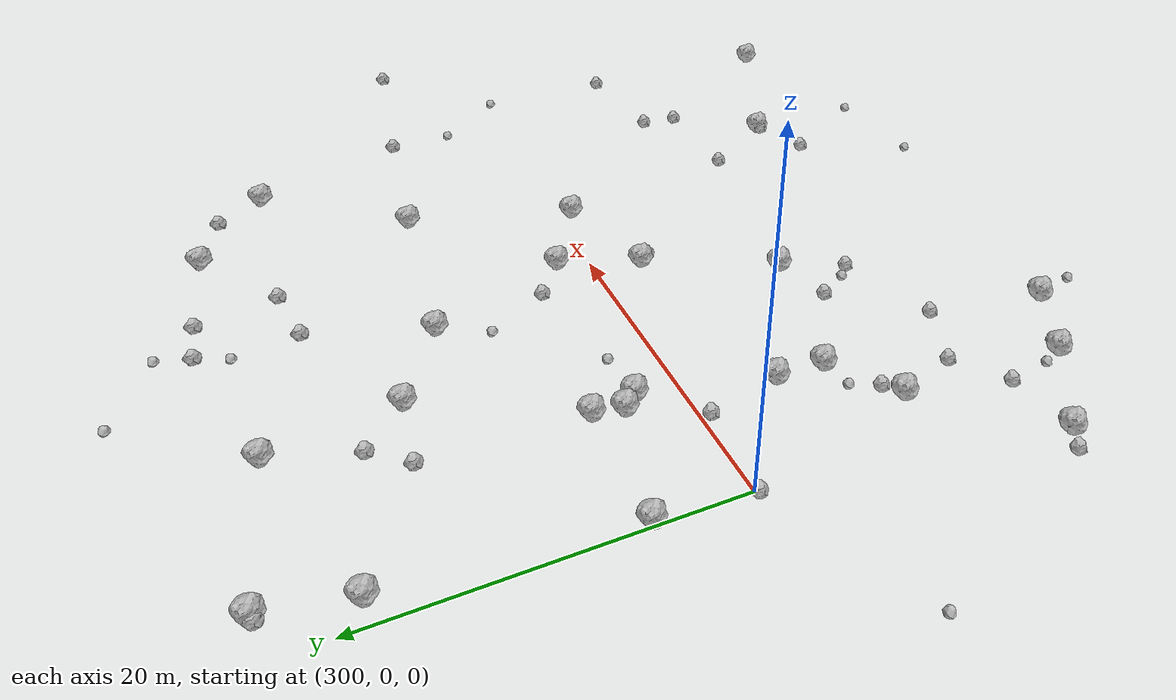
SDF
<sdf version="1.6">
 <world name="default">
  <include><uri>model://sun</uri></include>
  <model name="rock1_8_3">
   <include><uri>model://rock1</uri><pose>330.20295519469346 -17.174651503190063 0.5 0 0 0</pose></include>
  </model>
  <model name="rock1_8_4">
   <include><uri>model://rock1</uri><pose>306.66241591669984 -5.002842590766846 0.5 0 0 0</pose></include>
  </model>
  <model name="rock1_8_5">
   <include><uri>model://rock1</uri><pose>311.855378233129 20.98807953715793 0.5 0 0 0</pose></include>
  </model>
  <model name="rock1_8_6">
   <include><uri>model://rock1</uri><pose>308.5652072691106 2.3588543582813912 0.5 0 0 0</pose></include>
  </model>
  <model name="rock1_8_7">
   <include><uri>model://rock1</uri><pose>317.9394539228037 10.231781296043302 0.5 0 0 0</pose></include>
  </model>
  <model name="rock1_8_8">
   <include><uri>model://rock1</uri><pose>307.7295003837792 3.2767136876637792 0.5 0 0 0</pose></include>
  </model>
  <model name="rock1_8_9">
   <include><uri>model://rock1</uri><pose>301.6820650691728 18.43618125912647 0.5 0 0 0</pose></include>
  </model>
  <model name="rock1_8_10">
   <include><uri>model://rock1</uri><pose>328.821797156137 8.65825510836688 0.5 0 0 0</pose></include>
  </model>
  <model name="rock1_8_11">
   <include><uri>model://rock1</uri><pose>320.90441769913247 1.791573658627577 0.5 0 0 0</pose></include>
  </model>
  <model name="rock1_8_12">
   <include><uri>model://rock1</uri><pose>306.5638009647181 -7.855747958374572 0.5 0 0 0</pose></include>
  </model>
  <model name="rock1_8_13">
   <include><uri>model://rock1</uri><pose>319.0602337523888 -2.892322891936111 0.5 0 0 0</pose></include>
  </model>
  <model name="rock1_8_14">
   <include><uri>model://rock1</uri><pose>300.43346040573556 5.217315942010465 0.5 0 0 0</pose></include>
  </model>
  <model name="rock1_8_15">
   <include><uri>model://rock1</uri><pose>302.3411259805106 -20.160281001137392 0.5 0 0 0</pose></include>
  </model>
  <model name="rock1_8_16">
   <include><uri>model://rock1</uri><pose>308.0958102867432 4.9827301792570395 0.5 0 0 0</pose></include>
  </model>
  <model name="rock1_8_17">
   <include><uri>model://rock1</uri><pose>312.83745053771963 13.524950286613496 0.5 0 0 0</pose></include>
  </model>
  <model name="rock1_8_18">
   <include><uri>model://rock1</uri><pose>315.30258809240104 -10.245242518966108 0.5 0 0 0</pose></include>
  </model>
  <model name="rock1_8_19">
   <include><uri>model://rock1</uri><pose>302.8520926121683 -10.465489926669893 0.5 0 0 0</pose></include>
  </model>
  <model name="rock1_8_20">
   <include><uri>model://rock1</uri><pose>329.6215553310617 21.216292162625756 0.5 0 0 0</pose></include>
  </model>
  <model name="rock1_8_21">
   <include><uri>model://rock1</uri><pose>340.1577631790048 -21.830606340718553 0.5 0 0 0</pose></include>
  </model>
  <model name="rock1_8_22">
   <include><uri>model://rock1</uri><pose>325.6689287982356 -1.0873214385585754 0.5 0 0 0</pose></include>
  </model>
  <model name="rock1_8_23">
   <include><uri>model://rock1</uri><pose>335.1147611810753 16.616194429877332 0.5 0 0 0</pose></include>
  </model>
  <model name="rock1_8_24">
   <include><uri>model://rock1</uri><pose>302.6950469865454 23.082941815810912 0.5 0 0 0</pose></include>
  </model>
  <model name="rock1_8_25">
   <include><uri>model://rock1</uri><pose>297.26421578932997 -16.65960926719945 0.5 0 0 0</pose></include>
  </model>
  <model name="rock1_8_26">
   <include><uri>model://rock1</uri><pose>306.5881257781505 -22.470681236273442 0.5 0 0 0</pose></include>
  </model>
  <model name="rock2_8_0">
   <include><uri>model://rock2</uri><pose>311.54394934045274 -11.06339903439245 0.3 0 0 0</pose></include>
  </model>
  <model name="rock2_8_1">
   <include><uri>model://rock2</uri><pose>301.109201225405 -16.068728777172517 0.3 0 0 0</pose></include>
  </model>
  <model name="rock2_8_2">
   <include><uri>model://rock2</uri><pose>329.7122027612622 -17.186698108881323 0.3 0 0 0</pose></include>
  </model>
  <model name="rock2_8_3">
   <include><uri>model://rock2</uri><pose>323.3197890103128 22.457993143493553 0.3 0 0 0</pose></include>
  </model>
  <model name="rock2_8_4">
   <include><uri>model://rock2</uri><pose>337.82941077577476 7.12449647940123 0.3 0 0 0</pose></include>
  </model>
  <model name="rock2_8_5">
   <include><uri>model://rock2</uri><pose>309.9767429693479 16.221887211626758 0.3 0 0 0</pose></include>
  </model>
  <model name="rock2_8_6">
   <include><uri>model://rock2</uri><pose>303.88071659931313 -14.027404082677034 0.3 0 0 0</pose></include>
  </model>
  <model name="rock2_8_7">
   <include><uri>model://rock2</uri><pose>313.3806365213029 -13.680656489553538 0.3 0 0 0</pose></include>
  </model>
  <model name="rock2_8_8">
   <include><uri>model://rock2</uri><pose>333.4997537501871 -12.233603164106391 0.3 0 0 0</pose></include>
  </model>
  <model name="rock2_8_9">
   <include><uri>model://rock2</uri><pose>302.15968149816956 23.00576370264779 0.3 0 0 0</pose></include>
  </model>
  <model name="rock2_8_10">
   <include><uri>model://rock2</uri><pose>324.12455501326673 17.66418742863192 0.3 0 0 0</pose></include>
  </model>
  <model name="rock2_8_11">
   <include><uri>model://rock2</uri><pose>303.60895965109205 -9.585460642553404 0.3 0 0 0</pose></include>
  </model>
  <model name="rock2_8_12">
   <include><uri>model://rock2</uri><pose>308.2505946010179 14.238935001393564 0.3 0 0 0</pose></include>
  </model>
  <model name="rock2_8_13">
   <include><uri>model://rock2</uri><pose>319.2602196546111 -3.4278733554547856 0.3 0 0 0</pose></include>
  </model>
  <model name="rock2_8_14">
   <include><uri>model://rock2</uri><pose>333.14984586638866 19.56983916792082 0.3 0 0 0</pose></include>
  </model>
  <model name="rock2_8_15">
   <include><uri>model://rock2</uri><pose>307.6574772199222 -15.592891757531493 0.3 0 0 0</pose></include>
  </model>
  <model name="rock2_8_16">
   <include><uri>model://rock2</uri><pose>305.40859793866923 -0.5006848240735415 0.3 0 0 0</pose></include>
  </model>
  <model name="rock2_8_17">
   <include><uri>model://rock2</uri><pose>320.2986829126628 17.196345566903716 0.3 0 0 0</pose></include>
  </model>
  <model name="rock2_8_18">
   <include><uri>model://rock2</uri><pose>347.82301315036057 5.157089943162006 0.3 0 0 0</pose></include>
  </model>
  <model name="rock2_8_19">
   <include><uri>model://rock2</uri><pose>326.4973848565545 -18.521973654124352 0.3 0 0 0</pose></include>
  </model>
  <model name="rock2_8_20">
   <include><uri>model://rock2</uri><pose>340.60041130685715 -9.285728134278582 0.3 0 0 0</pose></include>
  </model>
  <model name="rock2_8_21">
   <include><uri>model://rock2</uri><pose>299.7747847887062 -0.10051768942287964 0.3 0 0 0</pose></include>
  </model>
  <model name="rock2_8_22">
   <include><uri>model://rock2</uri><pose>320.59865365372616 22.88423210605312 0.3 0 0 0</pose></include>
  </model>
  <model name="rock2_8_23">
   <include><uri>model://rock2</uri><pose>318.18839105650846 3.739587117963211 0.3 0 0 0</pose></include>
  </model>
  <model name="rock2_8_24">
   <include><uri>model://rock2</uri><pose>333.82969298585226 -10.044677892322195 0.3 0 0 0</pose></include>
  </model>
  <model name="rock2_8_25">
   <include><uri>model://rock2</uri><pose>295.7895944255644 -15.784583663456846 0.3 0 0 0</pose></include>
  </model>
  <model name="rock2_8_26">
   <include><uri>model://rock2</uri><pose>327.02442248712384 -12.431998929699336 0.3 0 0 0</pose></include>
  </model>
  <model name="rock3_8_0">
   <include><uri>model://rock3</uri><pose>321.2548417629392 24.83277800468069 0.2 0 0 0</pose></include>
  </model>
  <model name="rock3_8_1">
   <include><uri>model://rock3</uri><pose>337.8469355181218 3.1832948223824786 0.2 0 0 0</pose></include>
  </model>
  <model name="rock3_8_2">
   <include><uri>model://rock3</uri><pose>316.19206144479176 7.432452695378245 0.2 0 0 0</pose></include>
  </model>
  <model name="rock3_8_3">
   <include><uri>model://rock3</uri><pose>290.42426958983685 -4.098426493799664 0.2 0 0 0</pose></include>
  </model>
  <model name="rock3_8_4">
   <include><uri>model://rock3</uri><pose>304.42480454008484 -8.147137285602597 0.2 0 0 0</pose></include>
  </model>
  <model name="rock3_8_5">
   <include><uri>model://rock3</uri><pose>323.38926508855786 -25.001671421853025 0.2 0 0 0</pose></include>
  </model>
  <model name="rock3_8_6">
   <include><uri>model://rock3</uri><pose>311.4316946608505 2.558691650927557 0.2 0 0 0</pose></include>
  </model>
  <model name="rock3_8_7">
   <include><uri>model://rock3</uri><pose>329.8342390380483 -24.351949642068885 0.2 0 0 0</pose></include>
  </model>
  <model name="rock3_8_8">
   <include><uri>model://rock3</uri><pose>312.6301481906342 -12.997266762232385 0.2 0 0 0</pose></include>
  </model>
  <model name="rock3_8_9">
   <include><uri>model://rock3</uri><pose>319.79150115864155 20.981359515040396 0.2 0 0 0</pose></include>
  </model>
  <model name="rock3_8_10">
   <include><uri>model://rock3</uri><pose>301.56046353929014 -18.788904183446682 0.2 0 0 0</pose></include>
  </model>
  <model name="rock3_8_11">
   <include><uri>model://rock3</uri><pose>316.7654855216024 27.682089607971328 0.2 0 0 0</pose></include>
  </model>
  <model name="rock3_8_12">
   <include><uri>model://rock3</uri><pose>306.9940364127521 -24.940294117495284 0.2 0 0 0</pose></include>
  </model>
  <model name="rock3_8_13">
   <include><uri>model://rock3</uri><pose>340.96063028293753 -1.0568743174692337 0.2 0 0 0</pose></include>
  </model>
 </world>
</sdf>
